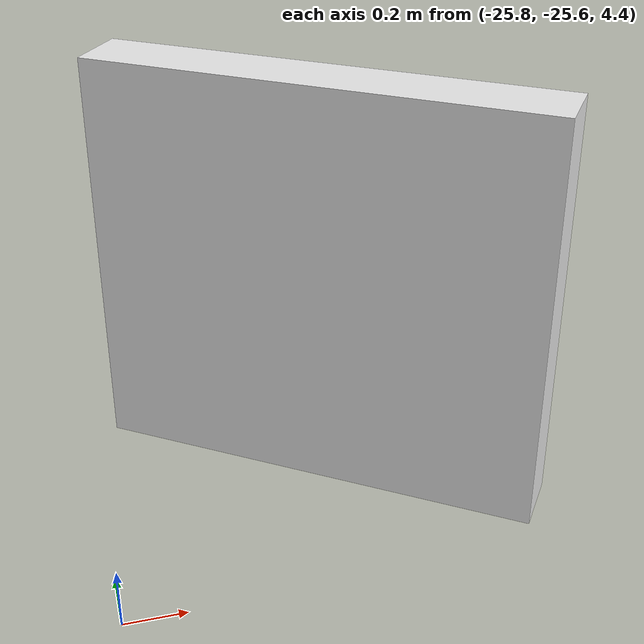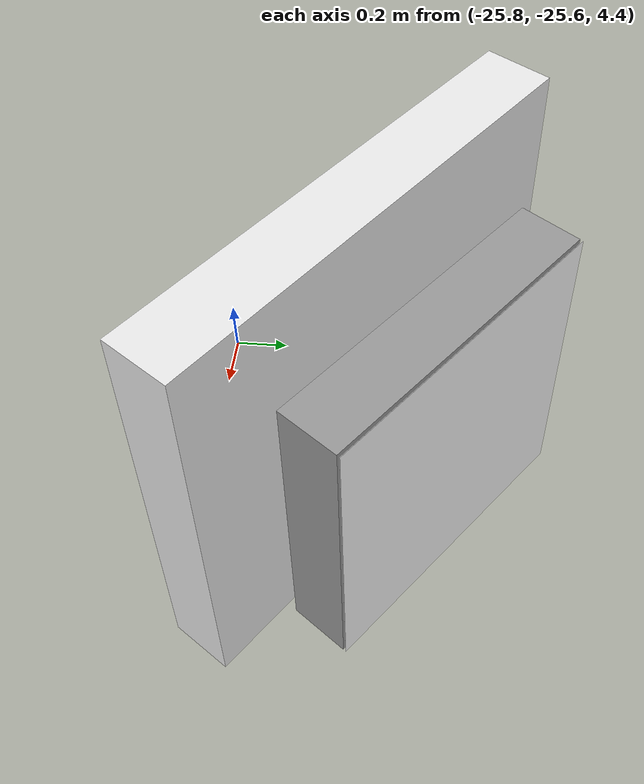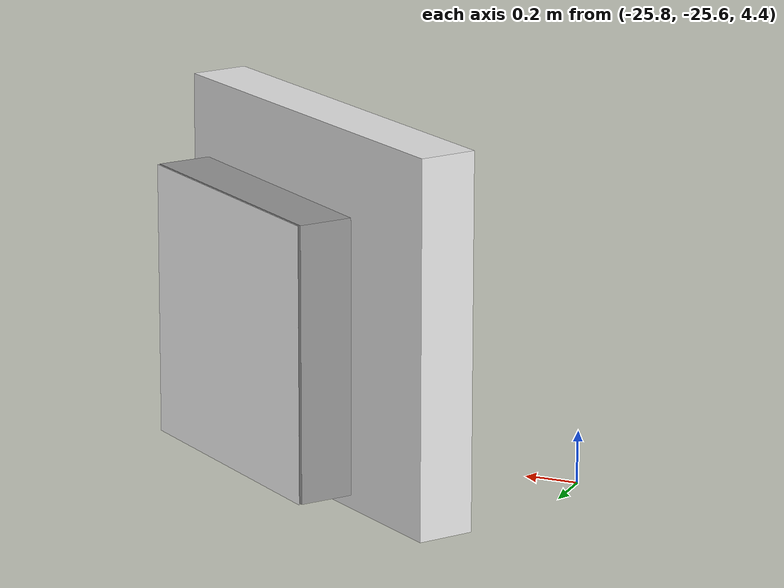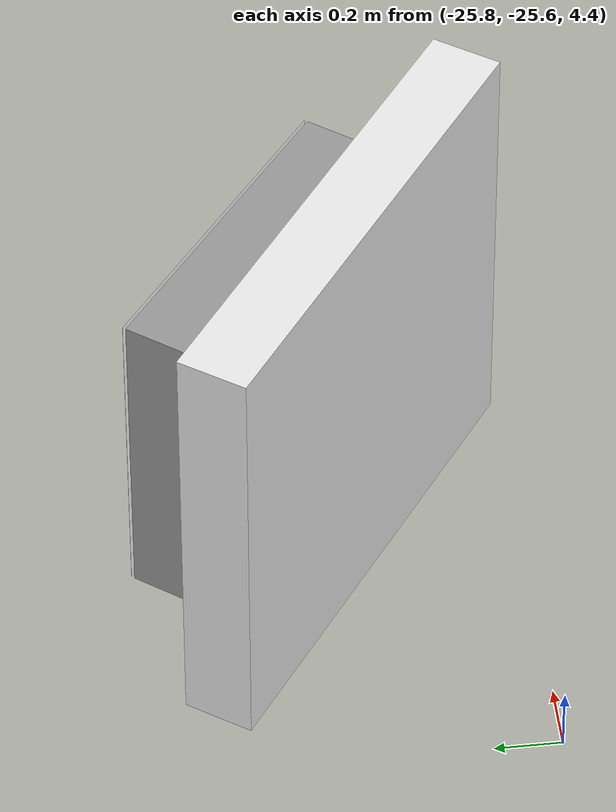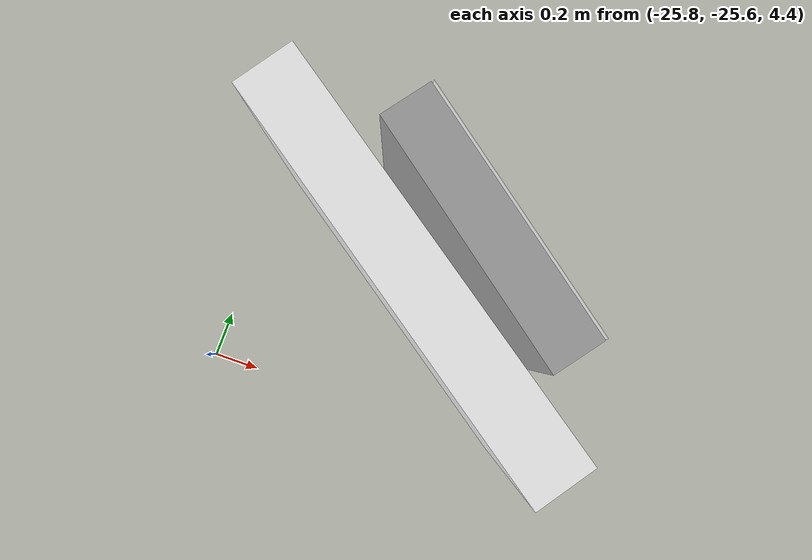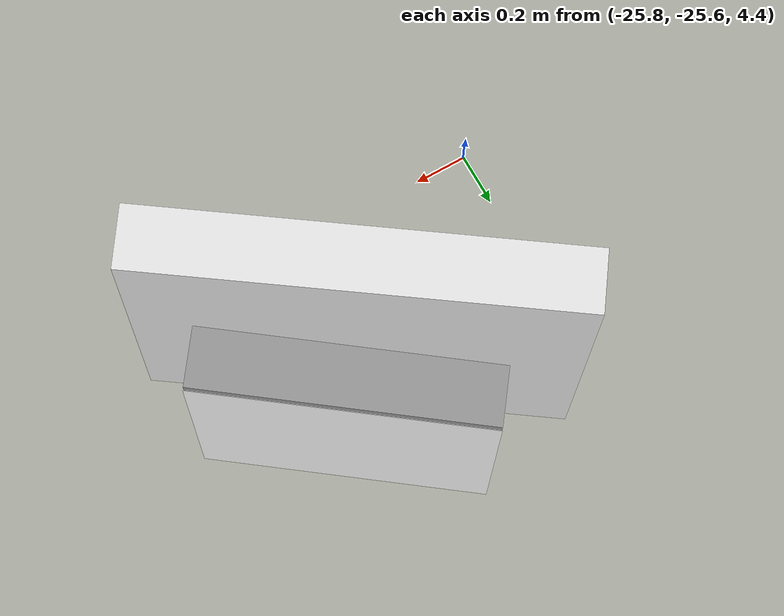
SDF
<sdf version="1.6">
 <world name="default">
  <model name="marker34_box">
   <link name="marker">
    <inertial>
     <mass>0.1</mass>
     <inertia><ixx>0</ixx><ixy>0</ixy><ixz>0</ixz><iyy>0</iyy><iyz>0</iyz><izz>0</izz></inertia>
    </inertial>
    <self_collide>1</self_collide>
    <pose>0 0 0.25 0 -0 0</pose>
    <visual name="visual">
     <geometry><box><size>1 0.001 1</size></box></geometry>
     <material>
      <script>
       <uri>/root/model_editor_models/marker34/material/scripts</uri>
       <uri>/root/model_editor_models/marker34/material/textures</uri>
       <name>Aruco/marker34</name>
      </script>
      <shader type="pixel"><normal_map>__default__</normal_map></shader>
      <emissive>0 0 0 1</emissive>
      <ambient>1 1 1 1</ambient>
      <diffuse>1 1 1 1</diffuse>
      <specular>0 0 0 1</specular>
     </material>
    </visual>
    <collision name="collision">
     <geometry><box><size>1 0.001 1</size></box></geometry>
     <surface>
      <friction>
       <ode><mu>1</mu><mu2>1</mu2><fdir1>0 0 0</fdir1><slip1>0</slip1><slip2>0</slip2></ode>
       <torsional>
        <coefficient>1</coefficient>
        <patch_radius>0</patch_radius>
        <surface_radius>0</surface_radius>
        <use_patch_radius>1</use_patch_radius>
        <ode><slip>0</slip></ode>
       </torsional>
      </friction>
      <bounce><restitution_coefficient>0</restitution_coefficient><threshold>1e+06</threshold></bounce>
      <contact>
       <collide_without_contact>0</collide_without_contact>
       <collide_without_contact_bitmask>1</collide_without_contact_bitmask>
       <collide_bitmask>1</collide_bitmask>
       <ode>
        <soft_cfm>0</soft_cfm>
        <soft_erp>0.2</soft_erp>
        <kp>1e+13</kp>
        <kd>1</kd>
        <max_vel>0.01</max_vel>
        <min_depth>0</min_depth>
       </ode>
       <bullet>
        <split_impulse>1</split_impulse>
        <split_impulse_penetration_threshold>-0.01</split_impulse_penetration_threshold>
        <soft_cfm>0</soft_cfm>
        <soft_erp>0.2</soft_erp>
        <kp>1e+13</kp>
        <kd>1</kd>
       </bullet>
      </contact>
     </surface>
    </collision>
   </link>
   <link name="link_1">
    <inertial>
     <mass>1</mass>
     <inertia>
      <ixx>0.166667</ixx>
      <ixy>0</ixy>
      <ixz>0</ixz>
      <iyy>0.166667</iyy>
      <iyz>0</iyz>
      <izz>0.166667</izz>
     </inertia>
    </inertial>
    <pose>0 0.11 0.25 0 -0 0</pose>
    <visual name="visual">
     <geometry><box><size>1 0.2 1</size></box></geometry>
     <material>
      <lighting>1</lighting>
      <script><uri>file://media/materials/scripts/gazebo.material</uri><name>Gazebo/Grey</name></script>
      <shader type="pixel"><normal_map>__default__</normal_map></shader>
      <emissive>0 0 0 1</emissive>
      <ambient>0.3 0.3 0.3 1</ambient>
      <diffuse>0.7 0.7 0.7 1</diffuse>
      <specular>0.01 0.01 0.01 1</specular>
     </material>
    </visual>
    <collision name="collision">
     <geometry><box><size>1 0.2 1</size></box></geometry>
     <surface>
      <friction>
       <ode><mu>1</mu><mu2>1</mu2><fdir1>0 0 0</fdir1><slip1>0</slip1><slip2>0</slip2></ode>
       <torsional>
        <coefficient>1</coefficient>
        <patch_radius>0</patch_radius>
        <surface_radius>0</surface_radius>
        <use_patch_radius>1</use_patch_radius>
        <ode><slip>0</slip></ode>
       </torsional>
      </friction>
      <bounce><restitution_coefficient>0</restitution_coefficient><threshold>1e+06</threshold></bounce>
      <contact>
       <collide_without_contact>0</collide_without_contact>
       <collide_without_contact_bitmask>1</collide_without_contact_bitmask>
       <collide_bitmask>1</collide_bitmask>
       <ode>
        <soft_cfm>0</soft_cfm>
        <soft_erp>0.2</soft_erp>
        <kp>1e+13</kp>
        <kd>1</kd>
        <max_vel>0.01</max_vel>
        <min_depth>0</min_depth>
       </ode>
       <bullet>
        <split_impulse>1</split_impulse>
        <split_impulse_penetration_threshold>-0.01</split_impulse_penetration_threshold>
        <soft_cfm>0</soft_cfm>
        <soft_erp>0.2</soft_erp>
        <kp>1e+13</kp>
        <kd>1</kd>
       </bullet>
      </contact>
     </surface>
    </collision>
   </link>
   <joint name="link_1_JOINT_3" type="fixed">
    <parent>link_1</parent>
    <child>marker</child>
    <physics>
     <ode><limit><cfm>0</cfm><erp>0.2</erp></limit><suspension><cfm>0</cfm><erp>0.2</erp></suspension></ode>
    </physics>
   </joint>
   <static>0</static>
   <pose>-24.7964 -24.7179 4.85429 0.001537 -0.002522 2.49918</pose>
  </model>
  <model name="unit_box_1">
   <link name="link">
    <inertial>
     <mass>1</mass>
     <inertia>
      <ixx>0.166667</ixx>
      <ixy>0</ixy>
      <ixz>0</ixz>
      <iyy>0.166667</iyy>
      <iyz>0</iyz>
      <izz>0.166667</izz>
     </inertia>
    </inertial>
    <visual name="visual">
     <geometry><box><size>1.50119 0.213615 1.37005</size></box></geometry>
     <material>
      <script><name>Gazebo/White</name><uri>file://media/materials/scripts/gazebo.material</uri></script>
      <shader type="vertex"><normal_map>__default__</normal_map></shader>
      <ambient>1 1 1 1</ambient>
      <diffuse>1 1 1 1</diffuse>
      <specular>0 0 0 1</specular>
      <emissive>0 0 0 1</emissive>
     </material>
    </visual>
    <collision name="collision">
     <geometry><box><size>1.50119 0.213615 1.37005</size></box></geometry>
     <surface>
      <friction>
       <ode><mu>1</mu><mu2>1</mu2><fdir1>0 0 0</fdir1><slip1>0</slip1><slip2>0</slip2></ode>
       <torsional>
        <coefficient>1</coefficient>
        <patch_radius>0</patch_radius>
        <surface_radius>0</surface_radius>
        <use_patch_radius>1</use_patch_radius>
        <ode><slip>0</slip></ode>
       </torsional>
      </friction>
      <bounce><restitution_coefficient>0</restitution_coefficient><threshold>1e+06</threshold></bounce>
      <contact>
       <collide_without_contact>0</collide_without_contact>
       <collide_without_contact_bitmask>1</collide_without_contact_bitmask>
       <collide_bitmask>1</collide_bitmask>
       <ode>
        <soft_cfm>0</soft_cfm>
        <soft_erp>0.2</soft_erp>
        <kp>1e+13</kp>
        <kd>1</kd>
        <max_vel>0.01</max_vel>
        <min_depth>0</min_depth>
       </ode>
       <bullet>
        <split_impulse>1</split_impulse>
        <split_impulse_penetration_threshold>-0.01</split_impulse_penetration_threshold>
        <soft_cfm>0</soft_cfm>
        <soft_erp>0.2</soft_erp>
        <kp>1e+13</kp>
        <kd>1</kd>
       </bullet>
      </contact>
     </surface>
    </collision>
   </link>
   <static>1</static>
   <pose>-25.0471 -25.0516 5.16883 0 0 -0.609152</pose>
  </model>
 </world>
</sdf>
